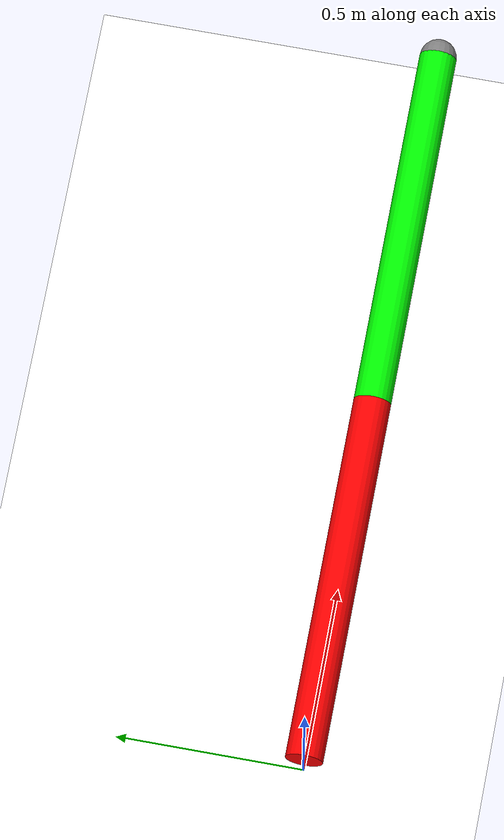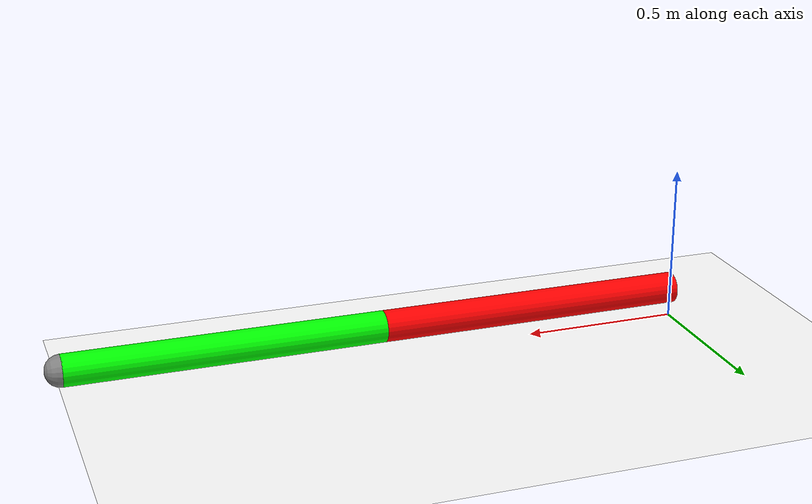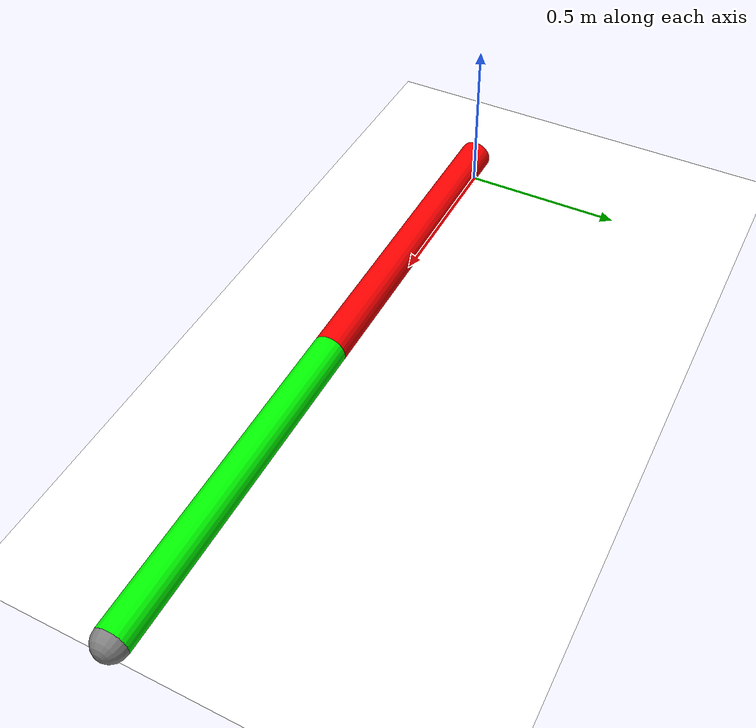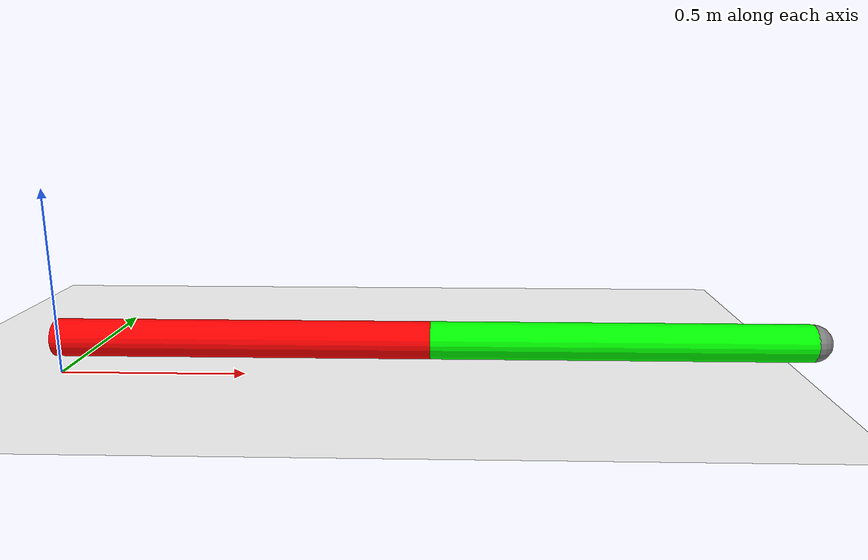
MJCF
<!--This is the 2D planner tut from YouTube-->

<mujoco>
	<!-- better to have this during the modeling phase	-->
	<option gravity="0 0 0"/>
	<worldbody>
		<!-- Light source -->
        <light diffuse=".5 .5 .5" pos="0 0 10" dir="0 0 -1"/>

		<!-- Ground plane -->
		<geom type="plane" size="2 2 0.1" rgba="1 1 1 1"/>

		<!-- Base of the manipulator -->
		<!-- Link 1 -->
		<body pos="0.5 0 0.1" name="link_1" euler="0 90 0">
			<!-- Joint type can be free, hinge, slide, ball, or free -->
			<!-- revolute joint are hinge -->
			<joint type="hinge" axis="-1 0 0" pos="0 0 -0.5"/>
			<!-- Cylinder have 2 parameters: radius and height -->
			<geom type="cylinder" size="0.05 0.5" rgba="1 0 0 1"/>

			<!-- Link 2: It is a child of link 1 -->
			<body pos="0 0 1" name="link_2" euler="0 0 0">
				<!-- We need to define thing with respect to the parent body (above)-->
				<joint type="hinge" axis="-1 0 0" pos="0 0 -0.5"/>
				<!-- Cylinder have 2 parameters: radius and height -->
				<geom type="cylinder" size="0.05 0.5" rgba="0 1 0 1"/>

				<!-- Adda tip to the manipulator -->
				<site name="tip" pos="0 0 0.5" size="0.05"/>
			</body>
		</body>
	</worldbody>

	<!-- Add a sensor to the tip of the manipulator -->
	<sensor>
		<framepos objtype="site" objname="tip"/>
	</sensor>
</mujoco>
